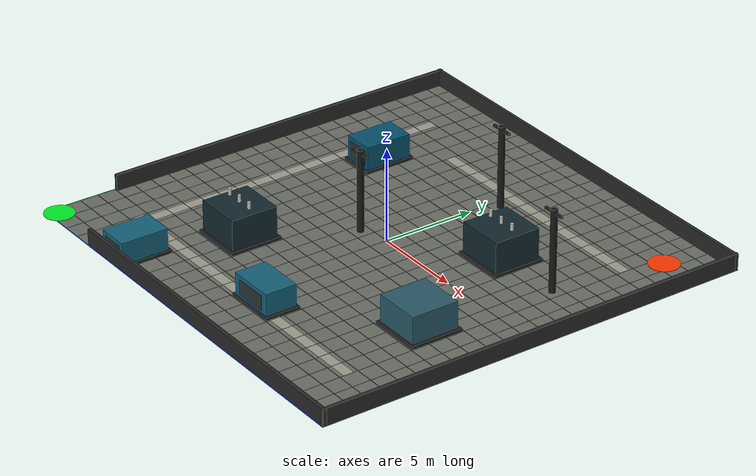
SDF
<?xml version='1.0' encoding='utf-8'?>
<sdf version="1.9">
  <world name="substation_medium">
    <gravity>0 0 -9.81</gravity>
    <magnetic_field>6e-06 2.3e-05 -4.2e-05</magnetic_field>
    <atmosphere type="adiabatic" />
    <scene>
      <ambient>0.72 0.72 0.72 1</ambient>
      <background>0.72 0.75 0.78 1</background>
    </scene>
    <light name="sun" type="directional">
      <cast_shadows>true</cast_shadows>
      <pose>0 0 20 0 0 0</pose>
      <diffuse>0.85 0.85 0.82 1</diffuse>
      <specular>0.2 0.2 0.2 1</specular>
      <direction>-0.5 0.1 -0.9</direction>
    </light>
    <spherical_coordinates>
      <surface_model>EARTH_WGS84</surface_model>
      <world_frame_orientation>ENU</world_frame_orientation>
      <latitude_deg>47.397971057728974</latitude_deg>
      <longitude_deg>8.546163739800146</longitude_deg>
      <elevation>0</elevation>
    </spherical_coordinates>
    <model name="substation_map">
      <static>true</static>
      <pose>-12 -12 0 0 0 0</pose>
      <model name="ground_plane">
        <static>true</static>
        <pose>12 12 0 0 0 0</pose>
        <link name="link">
          <collision name="collision">
            <geometry>
              <plane>
                <normal>0 0 1</normal>
                <size>28 28</size>
              </plane>
            </geometry>
          </collision>
        </link>
      </model>
      <model name="substation_floor">
        <static>true</static>
        <pose>12 12 0.01 0 0 0</pose>
        <link name="link">
          <visual name="visual">
            <pose>0 0 0 0 0 0</pose>
            <geometry>
              <box>
                <size>24 24 0.02</size>
              </box>
            </geometry>
            <material>
              <ambient>0.42 0.43 0.40 1</ambient>
              <diffuse>0.42 0.43 0.40 1</diffuse>
              <specular>0.08 0.08 0.08 1</specular>
            </material>
          </visual>
        </link>
      </model>
      <model name="substation_floor_grid">
        <static>true</static>
        <pose>0 0 0 0 0 0</pose>
        <link name="link">
          <visual name="x_grid_00">
            <pose>0 12 0.024 0 0 0</pose>
            <geometry>
              <box>
                <size>0.025 24 0.006</size>
              </box>
            </geometry>
            <material>
              <ambient>0.16 0.17 0.16 1</ambient>
              <diffuse>0.16 0.17 0.16 1</diffuse>
              <specular>0.08 0.08 0.08 1</specular>
            </material>
          </visual>
          <visual name="x_grid_01">
            <pose>1 12 0.024 0 0 0</pose>
            <geometry>
              <box>
                <size>0.025 24 0.006</size>
              </box>
            </geometry>
            <material>
              <ambient>0.16 0.17 0.16 1</ambient>
              <diffuse>0.16 0.17 0.16 1</diffuse>
              <specular>0.08 0.08 0.08 1</specular>
            </material>
          </visual>
          <visual name="x_grid_02">
            <pose>2 12 0.024 0 0 0</pose>
            <geometry>
              <box>
                <size>0.025 24 0.006</size>
              </box>
            </geometry>
            <material>
              <ambient>0.16 0.17 0.16 1</ambient>
              <diffuse>0.16 0.17 0.16 1</diffuse>
              <specular>0.08 0.08 0.08 1</specular>
            </material>
          </visual>
          <visual name="x_grid_03">
            <pose>3 12 0.024 0 0 0</pose>
            <geometry>
              <box>
                <size>0.025 24 0.006</size>
              </box>
            </geometry>
            <material>
              <ambient>0.16 0.17 0.16 1</ambient>
              <diffuse>0.16 0.17 0.16 1</diffuse>
              <specular>0.08 0.08 0.08 1</specular>
            </material>
          </visual>
          <visual name="x_grid_04">
            <pose>4 12 0.024 0 0 0</pose>
            <geometry>
              <box>
                <size>0.025 24 0.006</size>
              </box>
            </geometry>
            <material>
              <ambient>0.16 0.17 0.16 1</ambient>
              <diffuse>0.16 0.17 0.16 1</diffuse>
              <specular>0.08 0.08 0.08 1</specular>
            </material>
          </visual>
          <visual name="x_grid_05">
            <pose>5 12 0.024 0 0 0</pose>
            <geometry>
              <box>
                <size>0.025 24 0.006</size>
              </box>
            </geometry>
            <material>
              <ambient>0.16 0.17 0.16 1</ambient>
              <diffuse>0.16 0.17 0.16 1</diffuse>
              <specular>0.08 0.08 0.08 1</specular>
            </material>
          </visual>
          <visual name="x_grid_06">
            <pose>6 12 0.024 0 0 0</pose>
            <geometry>
              <box>
                <size>0.025 24 0.006</size>
              </box>
            </geometry>
            <material>
              <ambient>0.16 0.17 0.16 1</ambient>
              <diffuse>0.16 0.17 0.16 1</diffuse>
              <specular>0.08 0.08 0.08 1</specular>
            </material>
          </visual>
          <visual name="x_grid_07">
            <pose>7 12 0.024 0 0 0</pose>
            <geometry>
              <box>
                <size>0.025 24 0.006</size>
              </box>
            </geometry>
            <material>
              <ambient>0.16 0.17 0.16 1</ambient>
              <diffuse>0.16 0.17 0.16 1</diffuse>
              <specular>0.08 0.08 0.08 1</specular>
            </material>
          </visual>
          <visual name="x_grid_08">
            <pose>8 12 0.024 0 0 0</pose>
            <geometry>
              <box>
                <size>0.025 24 0.006</size>
              </box>
            </geometry>
            <material>
              <ambient>0.16 0.17 0.16 1</ambient>
              <diffuse>0.16 0.17 0.16 1</diffuse>
              <specular>0.08 0.08 0.08 1</specular>
            </material>
          </visual>
          <visual name="x_grid_09">
            <pose>9 12 0.024 0 0 0</pose>
            <geometry>
              <box>
                <size>0.025 24 0.006</size>
              </box>
            </geometry>
            <material>
              <ambient>0.16 0.17 0.16 1</ambient>
              <diffuse>0.16 0.17 0.16 1</diffuse>
              <specular>0.08 0.08 0.08 1</specular>
            </material>
          </visual>
          <visual name="x_grid_10">
            <pose>10 12 0.024 0 0 0</pose>
            <geometry>
              <box>
                <size>0.025 24 0.006</size>
              </box>
            </geometry>
            <material>
              <ambient>0.16 0.17 0.16 1</ambient>
              <diffuse>0.16 0.17 0.16 1</diffuse>
              <specular>0.08 0.08 0.08 1</specular>
            </material>
          </visual>
          <visual name="x_grid_11">
            <pose>11 12 0.024 0 0 0</pose>
            <geometry>
              <box>
                <size>0.025 24 0.006</size>
              </box>
            </geometry>
            <material>
              <ambient>0.16 0.17 0.16 1</ambient>
              <diffuse>0.16 0.17 0.16 1</diffuse>
              <specular>0.08 0.08 0.08 1</specular>
            </material>
          </visual>
          <visual name="x_grid_12">
            <pose>12 12 0.024 0 0 0</pose>
            <geometry>
              <box>
                <size>0.025 24 0.006</size>
              </box>
            </geometry>
            <material>
              <ambient>0.16 0.17 0.16 1</ambient>
              <diffuse>0.16 0.17 0.16 1</diffuse>
              <specular>0.08 0.08 0.08 1</specular>
            </material>
          </visual>
          <visual name="x_grid_13">
            <pose>13 12 0.024 0 0 0</pose>
            <geometry>
              <box>
                <size>0.025 24 0.006</size>
              </box>
            </geometry>
            <material>
              <ambient>0.16 0.17 0.16 1</ambient>
              <diffuse>0.16 0.17 0.16 1</diffuse>
              <specular>0.08 0.08 0.08 1</specular>
            </material>
          </visual>
          <visual name="x_grid_14">
            <pose>14 12 0.024 0 0 0</pose>
            <geometry>
              <box>
                <size>0.025 24 0.006</size>
              </box>
            </geometry>
            <material>
              <ambient>0.16 0.17 0.16 1</ambient>
              <diffuse>0.16 0.17 0.16 1</diffuse>
              <specular>0.08 0.08 0.08 1</specular>
            </material>
          </visual>
          <visual name="x_grid_15">
            <pose>15 12 0.024 0 0 0</pose>
            <geometry>
              <box>
                <size>0.025 24 0.006</size>
              </box>
            </geometry>
            <material>
              <ambient>0.16 0.17 0.16 1</ambient>
              <diffuse>0.16 0.17 0.16 1</diffuse>
              <specular>0.08 0.08 0.08 1</specular>
            </material>
          </visual>
          <visual name="x_grid_16">
            <pose>16 12 0.024 0 0 0</pose>
            <geometry>
              <box>
                <size>0.025 24 0.006</size>
              </box>
            </geometry>
            <material>
              <ambient>0.16 0.17 0.16 1</ambient>
              <diffuse>0.16 0.17 0.16 1</diffuse>
              <specular>0.08 0.08 0.08 1</specular>
            </material>
          </visual>
          <visual name="x_grid_17">
            <pose>17 12 0.024 0 0 0</pose>
            <geometry>
              <box>
                <size>0.025 24 0.006</size>
              </box>
            </geometry>
            <material>
              <ambient>0.16 0.17 0.16 1</ambient>
              <diffuse>0.16 0.17 0.16 1</diffuse>
              <specular>0.08 0.08 0.08 1</specular>
            </material>
          </visual>
          <visual name="x_grid_18">
            <pose>18 12 0.024 0 0 0</pose>
            <geometry>
              <box>
                <size>0.025 24 0.006</size>
              </box>
            </geometry>
            <material>
              <ambient>0.16 0.17 0.16 1</ambient>
              <diffuse>0.16 0.17 0.16 1</diffuse>
              <specular>0.08 0.08 0.08 1</specular>
            </material>
          </visual>
          <visual name="x_grid_19">
            <pose>19 12 0.024 0 0 0</pose>
            <geometry>
              <box>
                <size>0.025 24 0.006</size>
              </box>
            </geometry>
            <material>
              <ambient>0.16 0.17 0.16 1</ambient>
              <diffuse>0.16 0.17 0.16 1</diffuse>
              <specular>0.08 0.08 0.08 1</specular>
            </material>
          </visual>
          <visual name="x_grid_20">
            <pose>20 12 0.024 0 0 0</pose>
            <geometry>
              <box>
                <size>0.025 24 0.006</size>
              </box>
            </geometry>
            <material>
              <ambient>0.16 0.17 0.16 1</ambient>
              <diffuse>0.16 0.17 0.16 1</diffuse>
              <specular>0.08 0.08 0.08 1</specular>
            </material>
          </visual>
          <visual name="x_grid_21">
            <pose>21 12 0.024 0 0 0</pose>
            <geometry>
              <box>
                <size>0.025 24 0.006</size>
              </box>
            </geometry>
            <material>
              <ambient>0.16 0.17 0.16 1</ambient>
              <diffuse>0.16 0.17 0.16 1</diffuse>
              <specular>0.08 0.08 0.08 1</specular>
            </material>
          </visual>
          <visual name="x_grid_22">
            <pose>22 12 0.024 0 0 0</pose>
            <geometry>
              <box>
                <size>0.025 24 0.006</size>
              </box>
            </geometry>
            <material>
              <ambient>0.16 0.17 0.16 1</ambient>
              <diffuse>0.16 0.17 0.16 1</diffuse>
              <specular>0.08 0.08 0.08 1</specular>
            </material>
          </visual>
          <visual name="x_grid_23">
            <pose>23 12 0.024 0 0 0</pose>
            <geometry>
              <box>
                <size>0.025 24 0.006</size>
              </box>
            </geometry>
            <material>
              <ambient>0.16 0.17 0.16 1</ambient>
              <diffuse>0.16 0.17 0.16 1</diffuse>
              <specular>0.08 0.08 0.08 1</specular>
            </material>
          </visual>
          <visual name="x_grid_24">
            <pose>24 12 0.024 0 0 0</pose>
            <geometry>
              <box>
                <size>0.025 24 0.006</size>
              </box>
            </geometry>
            <material>
              <ambient>0.16 0.17 0.16 1</ambient>
              <diffuse>0.16 0.17 0.16 1</diffuse>
              <specular>0.08 0.08 0.08 1</specular>
            </material>
          </visual>
          <visual name="y_grid_00">
            <pose>12 0 0.024 0 0 0</pose>
            <geometry>
              <box>
                <size>24 0.025 0.006</size>
              </box>
            </geometry>
            <material>
              <ambient>0.16 0.17 0.16 1</ambient>
              <diffuse>0.16 0.17 0.16 1</diffuse>
              <specular>0.08 0.08 0.08 1</specular>
            </material>
          </visual>
          <visual name="y_grid_01">
            <pose>12 1 0.024 0 0 0</pose>
            <geometry>
              <box>
                <size>24 0.025 0.006</size>
              </box>
            </geometry>
            <material>
              <ambient>0.16 0.17 0.16 1</ambient>
              <diffuse>0.16 0.17 0.16 1</diffuse>
              <specular>0.08 0.08 0.08 1</specular>
            </material>
          </visual>
          <visual name="y_grid_02">
            <pose>12 2 0.024 0 0 0</pose>
            <geometry>
              <box>
                <size>24 0.025 0.006</size>
              </box>
            </geometry>
            <material>
              <ambient>0.16 0.17 0.16 1</ambient>
              <diffuse>0.16 0.17 0.16 1</diffuse>
              <specular>0.08 0.08 0.08 1</specular>
            </material>
          </visual>
          <visual name="y_grid_03">
            <pose>12 3 0.024 0 0 0</pose>
            <geometry>
              <box>
                <size>24 0.025 0.006</size>
              </box>
            </geometry>
            <material>
              <ambient>0.16 0.17 0.16 1</ambient>
              <diffuse>0.16 0.17 0.16 1</diffuse>
              <specular>0.08 0.08 0.08 1</specular>
            </material>
          </visual>
          <visual name="y_grid_04">
            <pose>12 4 0.024 0 0 0</pose>
            <geometry>
              <box>
                <size>24 0.025 0.006</size>
              </box>
            </geometry>
            <material>
              <ambient>0.16 0.17 0.16 1</ambient>
              <diffuse>0.16 0.17 0.16 1</diffuse>
              <specular>0.08 0.08 0.08 1</specular>
            </material>
          </visual>
          <visual name="y_grid_05">
            <pose>12 5 0.024 0 0 0</pose>
            <geometry>
              <box>
                <size>24 0.025 0.006</size>
              </box>
            </geometry>
            <material>
              <ambient>0.16 0.17 0.16 1</ambient>
              <diffuse>0.16 0.17 0.16 1</diffuse>
              <specular>0.08 0.08 0.08 1</specular>
            </material>
          </visual>
          <visual name="y_grid_06">
            <pose>12 6 0.024 0 0 0</pose>
            <geometry>
              <box>
                <size>24 0.025 0.006</size>
              </box>
            </geometry>
            <material>
              <ambient>0.16 0.17 0.16 1</ambient>
              <diffuse>0.16 0.17 0.16 1</diffuse>
              <specular>0.08 0.08 0.08 1</specular>
            </material>
          </visual>
          <visual name="y_grid_07">
            <pose>12 7 0.024 0 0 0</pose>
            <geometry>
              <box>
                <size>24 0.025 0.006</size>
              </box>
            </geometry>
            <material>
              <ambient>0.16 0.17 0.16 1</ambient>
              <diffuse>0.16 0.17 0.16 1</diffuse>
              <specular>0.08 0.08 0.08 1</specular>
            </material>
          </visual>
          <visual name="y_grid_08">
            <pose>12 8 0.024 0 0 0</pose>
            <geometry>
              <box>
                <size>24 0.025 0.006</size>
              </box>
            </geometry>
            <material>
              <ambient>0.16 0.17 0.16 1</ambient>
              <diffuse>0.16 0.17 0.16 1</diffuse>
              <specular>0.08 0.08 0.08 1</specular>
            </material>
          </visual>
          <visual name="y_grid_09">
            <pose>12 9 0.024 0 0 0</pose>
            <geometry>
              <box>
                <size>24 0.025 0.006</size>
              </box>
            </geometry>
            <material>
              <ambient>0.16 0.17 0.16 1</ambient>
              <diffuse>0.16 0.17 0.16 1</diffuse>
              <specular>0.08 0.08 0.08 1</specular>
            </material>
          </visual>
          <visual name="y_grid_10">
            <pose>12 10 0.024 0 0 0</pose>
            <geometry>
              <box>
                <size>24 0.025 0.006</size>
              </box>
            </geometry>
            <material>
              <ambient>0.16 0.17 0.16 1</ambient>
              <diffuse>0.16 0.17 0.16 1</diffuse>
              <specular>0.08 0.08 0.08 1</specular>
            </material>
          </visual>
          <visual name="y_grid_11">
            <pose>12 11 0.024 0 0 0</pose>
            <geometry>
              <box>
                <size>24 0.025 0.006</size>
              </box>
            </geometry>
            <material>
              <ambient>0.16 0.17 0.16 1</ambient>
              <diffuse>0.16 0.17 0.16 1</diffuse>
              <specular>0.08 0.08 0.08 1</specular>
            </material>
          </visual>
          <visual name="y_grid_12">
            <pose>12 12 0.024 0 0 0</pose>
            <geometry>
              <box>
                <size>24 0.025 0.006</size>
              </box>
            </geometry>
            <material>
              <ambient>0.16 0.17 0.16 1</ambient>
              <diffuse>0.16 0.17 0.16 1</diffuse>
              <specular>0.08 0.08 0.08 1</specular>
            </material>
          </visual>
          <visual name="y_grid_13">
            <pose>12 13 0.024 0 0 0</pose>
            <geometry>
              <box>
                <size>24 0.025 0.006</size>
              </box>
            </geometry>
            <material>
              <ambient>0.16 0.17 0.16 1</ambient>
              <diffuse>0.16 0.17 0.16 1</diffuse>
              <specular>0.08 0.08 0.08 1</specular>
            </material>
          </visual>
          <visual name="y_grid_14">
            <pose>12 14 0.024 0 0 0</pose>
            <geometry>
              <box>
                <size>24 0.025 0.006</size>
              </box>
            </geometry>
            <material>
              <ambient>0.16 0.17 0.16 1</ambient>
              <diffuse>0.16 0.17 0.16 1</diffuse>
              <specular>0.08 0.08 0.08 1</specular>
            </material>
          </visual>
          <visual name="y_grid_15">
            <pose>12 15 0.024 0 0 0</pose>
            <geometry>
              <box>
                <size>24 0.025 0.006</size>
              </box>
            </geometry>
            <material>
              <ambient>0.16 0.17 0.16 1</ambient>
              <diffuse>0.16 0.17 0.16 1</diffuse>
              <specular>0.08 0.08 0.08 1</specular>
            </material>
          </visual>
          <visual name="y_grid_16">
            <pose>12 16 0.024 0 0 0</pose>
            <geometry>
              <box>
                <size>24 0.025 0.006</size>
              </box>
            </geometry>
            <material>
              <ambient>0.16 0.17 0.16 1</ambient>
              <diffuse>0.16 0.17 0.16 1</diffuse>
              <specular>0.08 0.08 0.08 1</specular>
            </material>
          </visual>
          <visual name="y_grid_17">
            <pose>12 17 0.024 0 0 0</pose>
            <geometry>
              <box>
                <size>24 0.025 0.006</size>
              </box>
            </geometry>
            <material>
              <ambient>0.16 0.17 0.16 1</ambient>
              <diffuse>0.16 0.17 0.16 1</diffuse>
              <specular>0.08 0.08 0.08 1</specular>
            </material>
          </visual>
          <visual name="y_grid_18">
            <pose>12 18 0.024 0 0 0</pose>
            <geometry>
              <box>
                <size>24 0.025 0.006</size>
              </box>
            </geometry>
            <material>
              <ambient>0.16 0.17 0.16 1</ambient>
              <diffuse>0.16 0.17 0.16 1</diffuse>
              <specular>0.08 0.08 0.08 1</specular>
            </material>
          </visual>
          <visual name="y_grid_19">
            <pose>12 19 0.024 0 0 0</pose>
            <geometry>
              <box>
                <size>24 0.025 0.006</size>
              </box>
            </geometry>
            <material>
              <ambient>0.16 0.17 0.16 1</ambient>
              <diffuse>0.16 0.17 0.16 1</diffuse>
              <specular>0.08 0.08 0.08 1</specular>
            </material>
          </visual>
          <visual name="y_grid_20">
            <pose>12 20 0.024 0 0 0</pose>
            <geometry>
              <box>
                <size>24 0.025 0.006</size>
              </box>
            </geometry>
            <material>
              <ambient>0.16 0.17 0.16 1</ambient>
              <diffuse>0.16 0.17 0.16 1</diffuse>
              <specular>0.08 0.08 0.08 1</specular>
            </material>
          </visual>
          <visual name="y_grid_21">
            <pose>12 21 0.024 0 0 0</pose>
            <geometry>
              <box>
                <size>24 0.025 0.006</size>
              </box>
            </geometry>
            <material>
              <ambient>0.16 0.17 0.16 1</ambient>
              <diffuse>0.16 0.17 0.16 1</diffuse>
              <specular>0.08 0.08 0.08 1</specular>
            </material>
          </visual>
          <visual name="y_grid_22">
            <pose>12 22 0.024 0 0 0</pose>
            <geometry>
              <box>
                <size>24 0.025 0.006</size>
              </box>
            </geometry>
            <material>
              <ambient>0.16 0.17 0.16 1</ambient>
              <diffuse>0.16 0.17 0.16 1</diffuse>
              <specular>0.08 0.08 0.08 1</specular>
            </material>
          </visual>
          <visual name="y_grid_23">
            <pose>12 23 0.024 0 0 0</pose>
            <geometry>
              <box>
                <size>24 0.025 0.006</size>
              </box>
            </geometry>
            <material>
              <ambient>0.16 0.17 0.16 1</ambient>
              <diffuse>0.16 0.17 0.16 1</diffuse>
              <specular>0.08 0.08 0.08 1</specular>
            </material>
          </visual>
          <visual name="y_grid_24">
            <pose>12 24 0.024 0 0 0</pose>
            <geometry>
              <box>
                <size>24 0.025 0.006</size>
              </box>
            </geometry>
            <material>
              <ambient>0.16 0.17 0.16 1</ambient>
              <diffuse>0.16 0.17 0.16 1</diffuse>
              <specular>0.08 0.08 0.08 1</specular>
            </material>
          </visual>
        </link>
      </model>
      <model name="map_axes">
        <static>true</static>
        <pose>0 0 0 0 0 0</pose>
        <link name="link">
          <visual name="east_axis">
            <pose>12 0 0.028 0 0 0</pose>
            <geometry>
              <box>
                <size>24 0.045 0.012</size>
              </box>
            </geometry>
            <material>
              <ambient>0.08 0.24 0.95 1</ambient>
              <diffuse>0.08 0.24 0.95 1</diffuse>
              <specular>0.08 0.08 0.08 1</specular>
            </material>
          </visual>
          <visual name="north_axis">
            <pose>0 12 0.028 0 0 0</pose>
            <geometry>
              <box>
                <size>0.045 24 0.012</size>
              </box>
            </geometry>
            <material>
              <ambient>0.05 0.76 0.18 1</ambient>
              <diffuse>0.05 0.76 0.18 1</diffuse>
              <specular>0.08 0.08 0.08 1</specular>
            </material>
          </visual>
        </link>
      </model>
      <model name="service_corridor_1">
        <static>true</static>
        <pose>12 3.5 0.021 0 0 0</pose>
        <link name="link">
          <visual name="visual">
            <pose>0 0 0 0 0 0</pose>
            <geometry>
              <box>
                <size>18 0.55 0.01</size>
              </box>
            </geometry>
            <material>
              <ambient>0.62 0.62 0.56 1</ambient>
              <diffuse>0.62 0.62 0.56 1</diffuse>
              <specular>0.08 0.08 0.08 1</specular>
            </material>
          </visual>
        </link>
      </model>
      <model name="service_corridor_2">
        <static>true</static>
        <pose>3.5 12 0.021 0 0 0</pose>
        <link name="link">
          <visual name="visual">
            <pose>0 0 0 0 0 0</pose>
            <geometry>
              <box>
                <size>0.55 18 0.01</size>
              </box>
            </geometry>
            <material>
              <ambient>0.62 0.62 0.56 1</ambient>
              <diffuse>0.62 0.62 0.56 1</diffuse>
              <specular>0.08 0.08 0.08 1</specular>
            </material>
          </visual>
        </link>
      </model>
      <model name="service_corridor_3">
        <static>true</static>
        <pose>14 19.5 0.021 0 0 0</pose>
        <link name="link">
          <visual name="visual">
            <pose>0 0 0 0 0 0</pose>
            <geometry>
              <box>
                <size>14 0.55 0.01</size>
              </box>
            </geometry>
            <material>
              <ambient>0.62 0.62 0.56 1</ambient>
              <diffuse>0.62 0.62 0.56 1</diffuse>
              <specular>0.08 0.08 0.08 1</specular>
            </material>
          </visual>
        </link>
      </model>
      <model name="start_marker">
        <static>true</static>
        <pose>0.5 0.5 0.035 0 0 0</pose>
        <link name="link">
          <visual name="visual">
            <pose>0 0 0 0 0 0</pose>
            <geometry>
              <cylinder>
                <radius>0.8</radius>
                <length>0.03</length>
              </cylinder>
            </geometry>
            <material>
              <ambient>0.0 0.95 0.15 1</ambient>
              <diffuse>0.0 0.95 0.15 1</diffuse>
              <specular>0.08 0.08 0.08 1</specular>
            </material>
          </visual>
        </link>
      </model>
      <model name="goal_marker">
        <static>true</static>
        <pose>21.5 21.5 0.035 0 0 0</pose>
        <link name="link">
          <visual name="visual">
            <pose>0 0 0 0 0 0</pose>
            <geometry>
              <cylinder>
                <radius>0.8</radius>
                <length>0.03</length>
              </cylinder>
            </geometry>
            <material>
              <ambient>1.0 0.22 0.0 1</ambient>
              <diffuse>1.0 0.22 0.0 1</diffuse>
              <specular>0.08 0.08 0.08 1</specular>
            </material>
          </visual>
        </link>
      </model>
      <model name="fence_north">
        <static>true</static>
        <pose>12 23.88 0.45 0 0 0</pose>
        <link name="link">
          <collision name="collision">
            <pose>0 0 0 0 0 0</pose>
            <geometry>
              <box>
                <size>24 0.18 0.9</size>
              </box>
            </geometry>
          </collision>
          <visual name="visual">
            <pose>0 0 0 0 0 0</pose>
            <geometry>
              <box>
                <size>24 0.18 0.9</size>
              </box>
            </geometry>
            <material>
              <ambient>0.16 0.16 0.16 1</ambient>
              <diffuse>0.16 0.16 0.16 1</diffuse>
              <specular>0.08 0.08 0.08 1</specular>
            </material>
          </visual>
        </link>
      </model>
      <model name="fence_east">
        <static>true</static>
        <pose>23.88 12 0.45 0 0 0</pose>
        <link name="link">
          <collision name="collision">
            <pose>0 0 0 0 0 0</pose>
            <geometry>
              <box>
                <size>0.18 24 0.9</size>
              </box>
            </geometry>
          </collision>
          <visual name="visual">
            <pose>0 0 0 0 0 0</pose>
            <geometry>
              <box>
                <size>0.18 24 0.9</size>
              </box>
            </geometry>
            <material>
              <ambient>0.16 0.16 0.16 1</ambient>
              <diffuse>0.16 0.16 0.16 1</diffuse>
              <specular>0.08 0.08 0.08 1</specular>
            </material>
          </visual>
        </link>
      </model>
      <model name="fence_south">
        <static>true</static>
        <pose>14 0.12 0.45 0 0 0</pose>
        <link name="link">
          <collision name="collision">
            <pose>0 0 0 0 0 0</pose>
            <geometry>
              <box>
                <size>20 0.18 0.9</size>
              </box>
            </geometry>
          </collision>
          <visual name="visual">
            <pose>0 0 0 0 0 0</pose>
            <geometry>
              <box>
                <size>20 0.18 0.9</size>
              </box>
            </geometry>
            <material>
              <ambient>0.16 0.16 0.16 1</ambient>
              <diffuse>0.16 0.16 0.16 1</diffuse>
              <specular>0.08 0.08 0.08 1</specular>
            </material>
          </visual>
        </link>
      </model>
      <model name="fence_west">
        <static>true</static>
        <pose>0.12 14 0.45 0 0 0</pose>
        <link name="link">
          <collision name="collision">
            <pose>0 0 0 0 0 0</pose>
            <geometry>
              <box>
                <size>0.18 20 0.9</size>
              </box>
            </geometry>
          </collision>
          <visual name="visual">
            <pose>0 0 0 0 0 0</pose>
            <geometry>
              <box>
                <size>0.18 20 0.9</size>
              </box>
            </geometry>
            <material>
              <ambient>0.16 0.16 0.16 1</ambient>
              <diffuse>0.16 0.16 0.16 1</diffuse>
              <specular>0.08 0.08 0.08 1</specular>
            </material>
          </visual>
        </link>
      </model>
    </model>
    <model name="entry_switchgear">
      <static>true</static>
      <pose>-6 -10.5 0 0 0 0</pose>
      <link name="link">
        <collision name="collision">
          <pose>0 0 0.7 0 0 0</pose>
          <geometry>
            <box>
              <size>1.84 2.76 1.4</size>
            </box>
          </geometry>
        </collision>
        <visual name="base">
          <pose>0 0 0.08 0 0 0</pose>
          <geometry>
            <box>
              <size>1.92 2.88 0.16</size>
            </box>
          </geometry>
          <material>
            <ambient>0.10 0.10 0.10 1</ambient>
            <diffuse>0.10 0.10 0.10 1</diffuse>
            <specular>0.08 0.08 0.08 1</specular>
          </material>
          <plugin filename="gz-sim-label-system" name="gz::sim::systems::Label">
            <label>127</label>
          </plugin>
        </visual>
        <visual name="body">
          <pose>0 0 0.7 0 0 0</pose>
          <geometry>
            <box>
              <size>1.72 2.58 1.26</size>
            </box>
          </geometry>
          <material>
            <ambient>0.08 0.38 0.48 1</ambient>
            <diffuse>0.08 0.38 0.48 1</diffuse>
            <specular>0.08 0.08 0.08 1</specular>
          </material>
          <plugin filename="gz-sim-label-system" name="gz::sim::systems::Label">
            <label>127</label>
          </plugin>
        </visual>
        <visual name="front_panel">
          <pose>0 -1.305 0.7 0 0 0</pose>
          <geometry>
            <box>
              <size>1.24 0.025 0.812</size>
            </box>
          </geometry>
          <material>
            <ambient>0.16 0.20 0.21 1</ambient>
            <diffuse>0.16 0.20 0.21 1</diffuse>
            <specular>0.08 0.08 0.08 1</specular>
          </material>
          <plugin filename="gz-sim-label-system" name="gz::sim::systems::Label">
            <label>127</label>
          </plugin>
        </visual>
      </link>
    </model>
    <model name="transformer_west">
      <static>true</static>
      <pose>-4.5 -5.5 0 0 0 0</pose>
      <link name="link">
        <collision name="collision">
          <pose>0 0 0.95 0 0 0</pose>
          <geometry>
            <box>
              <size>2.76 2.76 1.9</size>
            </box>
          </geometry>
        </collision>
        <visual name="base">
          <pose>0 0 0.08 0 0 0</pose>
          <geometry>
            <box>
              <size>2.88 2.88 0.16</size>
            </box>
          </geometry>
          <material>
            <ambient>0.10 0.10 0.10 1</ambient>
            <diffuse>0.10 0.10 0.10 1</diffuse>
            <specular>0.08 0.08 0.08 1</specular>
          </material>
          <plugin filename="gz-sim-label-system" name="gz::sim::systems::Label">
            <label>55</label>
          </plugin>
        </visual>
        <visual name="body">
          <pose>0 0 0.95 0 0 0</pose>
          <geometry>
            <box>
              <size>2.58 2.58 1.71</size>
            </box>
          </geometry>
          <material>
            <ambient>0.07 0.16 0.19 1</ambient>
            <diffuse>0.07 0.16 0.19 1</diffuse>
            <specular>0.08 0.08 0.08 1</specular>
          </material>
          <plugin filename="gz-sim-label-system" name="gz::sim::systems::Label">
            <label>55</label>
          </plugin>
        </visual>
        <visual name="bushing_1">
          <pose>-0.84 0 2.08 0 0 0</pose>
          <geometry>
            <cylinder>
              <radius>0.09</radius>
              <length>0.36</length>
            </cylinder>
          </geometry>
          <material>
            <ambient>0.75 0.72 0.64 1</ambient>
            <diffuse>0.75 0.72 0.64 1</diffuse>
            <specular>0.08 0.08 0.08 1</specular>
          </material>
          <plugin filename="gz-sim-label-system" name="gz::sim::systems::Label">
            <label>55</label>
          </plugin>
        </visual>
        <visual name="bushing_2">
          <pose>0 0 2.08 0 0 0</pose>
          <geometry>
            <cylinder>
              <radius>0.09</radius>
              <length>0.36</length>
            </cylinder>
          </geometry>
          <material>
            <ambient>0.75 0.72 0.64 1</ambient>
            <diffuse>0.75 0.72 0.64 1</diffuse>
            <specular>0.08 0.08 0.08 1</specular>
          </material>
          <plugin filename="gz-sim-label-system" name="gz::sim::systems::Label">
            <label>55</label>
          </plugin>
        </visual>
        <visual name="bushing_3">
          <pose>0.84 0 2.08 0 0 0</pose>
          <geometry>
            <cylinder>
              <radius>0.09</radius>
              <length>0.36</length>
            </cylinder>
          </geometry>
          <material>
            <ambient>0.75 0.72 0.64 1</ambient>
            <diffuse>0.75 0.72 0.64 1</diffuse>
            <specular>0.08 0.08 0.08 1</specular>
          </material>
          <plugin filename="gz-sim-label-system" name="gz::sim::systems::Label">
            <label>55</label>
          </plugin>
        </visual>
      </link>
    </model>
    <model name="transformer_north">
      <static>true</static>
      <pose>4.5 3.5 0 0 0 0</pose>
      <link name="link">
        <collision name="collision">
          <pose>0 0 0.95 0 0 0</pose>
          <geometry>
            <box>
              <size>2.76 2.76 1.9</size>
            </box>
          </geometry>
        </collision>
        <visual name="base">
          <pose>0 0 0.08 0 0 0</pose>
          <geometry>
            <box>
              <size>2.88 2.88 0.16</size>
            </box>
          </geometry>
          <material>
            <ambient>0.10 0.10 0.10 1</ambient>
            <diffuse>0.10 0.10 0.10 1</diffuse>
            <specular>0.08 0.08 0.08 1</specular>
          </material>
          <plugin filename="gz-sim-label-system" name="gz::sim::systems::Label">
            <label>79</label>
          </plugin>
        </visual>
        <visual name="body">
          <pose>0 0 0.95 0 0 0</pose>
          <geometry>
            <box>
              <size>2.58 2.58 1.71</size>
            </box>
          </geometry>
          <material>
            <ambient>0.07 0.16 0.19 1</ambient>
            <diffuse>0.07 0.16 0.19 1</diffuse>
            <specular>0.08 0.08 0.08 1</specular>
          </material>
          <plugin filename="gz-sim-label-system" name="gz::sim::systems::Label">
            <label>79</label>
          </plugin>
        </visual>
        <visual name="bushing_1">
          <pose>-0.84 0 2.08 0 0 0</pose>
          <geometry>
            <cylinder>
              <radius>0.09</radius>
              <length>0.36</length>
            </cylinder>
          </geometry>
          <material>
            <ambient>0.75 0.72 0.64 1</ambient>
            <diffuse>0.75 0.72 0.64 1</diffuse>
            <specular>0.08 0.08 0.08 1</specular>
          </material>
          <plugin filename="gz-sim-label-system" name="gz::sim::systems::Label">
            <label>79</label>
          </plugin>
        </visual>
        <visual name="bushing_2">
          <pose>0 0 2.08 0 0 0</pose>
          <geometry>
            <cylinder>
              <radius>0.09</radius>
              <length>0.36</length>
            </cylinder>
          </geometry>
          <material>
            <ambient>0.75 0.72 0.64 1</ambient>
            <diffuse>0.75 0.72 0.64 1</diffuse>
            <specular>0.08 0.08 0.08 1</specular>
          </material>
          <plugin filename="gz-sim-label-system" name="gz::sim::systems::Label">
            <label>79</label>
          </plugin>
        </visual>
        <visual name="bushing_3">
          <pose>0.84 0 2.08 0 0 0</pose>
          <geometry>
            <cylinder>
              <radius>0.09</radius>
              <length>0.36</length>
            </cylinder>
          </geometry>
          <material>
            <ambient>0.75 0.72 0.64 1</ambient>
            <diffuse>0.75 0.72 0.64 1</diffuse>
            <specular>0.08 0.08 0.08 1</specular>
          </material>
          <plugin filename="gz-sim-label-system" name="gz::sim::systems::Label">
            <label>79</label>
          </plugin>
        </visual>
      </link>
    </model>
    <model name="cabinet_west">
      <static>true</static>
      <pose>-7 4.5 0 0 0 0</pose>
      <link name="link">
        <collision name="collision">
          <pose>0 0 0.75 0 0 0</pose>
          <geometry>
            <box>
              <size>1.84 2.76 1.5</size>
            </box>
          </geometry>
        </collision>
        <visual name="base">
          <pose>0 0 0.08 0 0 0</pose>
          <geometry>
            <box>
              <size>1.92 2.88 0.16</size>
            </box>
          </geometry>
          <material>
            <ambient>0.10 0.10 0.10 1</ambient>
            <diffuse>0.10 0.10 0.10 1</diffuse>
            <specular>0.08 0.08 0.08 1</specular>
          </material>
        </visual>
        <visual name="body">
          <pose>0 0 0.75 0 0 0</pose>
          <geometry>
            <box>
              <size>1.72 2.58 1.35</size>
            </box>
          </geometry>
          <material>
            <ambient>0.02 0.32 0.43 1</ambient>
            <diffuse>0.02 0.32 0.43 1</diffuse>
            <specular>0.08 0.08 0.08 1</specular>
          </material>
        </visual>
        <visual name="front_panel">
          <pose>0 -1.305 0.75 0 0 0</pose>
          <geometry>
            <box>
              <size>1.24 0.025 0.87</size>
            </box>
          </geometry>
          <material>
            <ambient>0.16 0.20 0.21 1</ambient>
            <diffuse>0.16 0.20 0.21 1</diffuse>
            <specular>0.08 0.08 0.08 1</specular>
          </material>
        </visual>
      </link>
    </model>
    <model name="switchgear_south">
      <static>true</static>
      <pose>1.5 -8 0 0 0 0</pose>
      <link name="link">
        <collision name="collision">
          <pose>0 0 0.7 0 0 0</pose>
          <geometry>
            <box>
              <size>2.76 1.84 1.4</size>
            </box>
          </geometry>
        </collision>
        <visual name="base">
          <pose>0 0 0.08 0 0 0</pose>
          <geometry>
            <box>
              <size>2.88 1.92 0.16</size>
            </box>
          </geometry>
          <material>
            <ambient>0.10 0.10 0.10 1</ambient>
            <diffuse>0.10 0.10 0.10 1</diffuse>
            <specular>0.08 0.08 0.08 1</specular>
          </material>
          <plugin filename="gz-sim-label-system" name="gz::sim::systems::Label">
            <label>149</label>
          </plugin>
        </visual>
        <visual name="body">
          <pose>0 0 0.7 0 0 0</pose>
          <geometry>
            <box>
              <size>2.58 1.72 1.26</size>
            </box>
          </geometry>
          <material>
            <ambient>0.08 0.38 0.48 1</ambient>
            <diffuse>0.08 0.38 0.48 1</diffuse>
            <specular>0.08 0.08 0.08 1</specular>
          </material>
          <plugin filename="gz-sim-label-system" name="gz::sim::systems::Label">
            <label>149</label>
          </plugin>
        </visual>
        <visual name="front_panel">
          <pose>0 -0.87 0.7 0 0 0</pose>
          <geometry>
            <box>
              <size>1.86 0.025 0.812</size>
            </box>
          </geometry>
          <material>
            <ambient>0.16 0.20 0.21 1</ambient>
            <diffuse>0.16 0.20 0.21 1</diffuse>
            <specular>0.08 0.08 0.08 1</specular>
          </material>
          <plugin filename="gz-sim-label-system" name="gz::sim::systems::Label">
            <label>149</label>
          </plugin>
        </visual>
      </link>
    </model>
    <model name="capacitor_east">
      <static>true</static>
      <pose>7.5 -3.5 0 0 0 0</pose>
      <link name="link">
        <collision name="collision">
          <pose>0 0 0.85 0 0 0</pose>
          <geometry>
            <box>
              <size>2.76 2.76 1.7</size>
            </box>
          </geometry>
        </collision>
        <visual name="base">
          <pose>0 0 0.08 0 0 0</pose>
          <geometry>
            <box>
              <size>2.88 2.88 0.16</size>
            </box>
          </geometry>
          <material>
            <ambient>0.10 0.10 0.10 1</ambient>
            <diffuse>0.10 0.10 0.10 1</diffuse>
            <specular>0.08 0.08 0.08 1</specular>
          </material>
          <plugin filename="gz-sim-label-system" name="gz::sim::systems::Label">
            <label>178</label>
          </plugin>
        </visual>
        <visual name="body">
          <pose>0 0 0.85 0 0 0</pose>
          <geometry>
            <box>
              <size>2.58 2.58 1.53</size>
            </box>
          </geometry>
          <material>
            <ambient>0.16 0.35 0.40 1</ambient>
            <diffuse>0.16 0.35 0.40 1</diffuse>
            <specular>0.08 0.08 0.08 1</specular>
          </material>
          <plugin filename="gz-sim-label-system" name="gz::sim::systems::Label">
            <label>178</label>
          </plugin>
        </visual>
        <visual name="capacitor_-0.22_-0.25">
          <pose>-0.75 -0.66 0.93 0 0 0</pose>
          <geometry>
            <cylinder>
              <radius>0.1</radius>
              <length>1.105</length>
            </cylinder>
          </geometry>
          <material>
            <ambient>0.72 0.74 0.70 1</ambient>
            <diffuse>0.72 0.74 0.70 1</diffuse>
            <specular>0.08 0.08 0.08 1</specular>
          </material>
          <plugin filename="gz-sim-label-system" name="gz::sim::systems::Label">
            <label>178</label>
          </plugin>
        </visual>
        <visual name="capacitor_-0.22_0.0">
          <pose>0 -0.66 0.93 0 0 0</pose>
          <geometry>
            <cylinder>
              <radius>0.1</radius>
              <length>1.105</length>
            </cylinder>
          </geometry>
          <material>
            <ambient>0.72 0.74 0.70 1</ambient>
            <diffuse>0.72 0.74 0.70 1</diffuse>
            <specular>0.08 0.08 0.08 1</specular>
          </material>
          <plugin filename="gz-sim-label-system" name="gz::sim::systems::Label">
            <label>178</label>
          </plugin>
        </visual>
        <visual name="capacitor_-0.22_0.25">
          <pose>0.75 -0.66 0.93 0 0 0</pose>
          <geometry>
            <cylinder>
              <radius>0.1</radius>
              <length>1.105</length>
            </cylinder>
          </geometry>
          <material>
            <ambient>0.72 0.74 0.70 1</ambient>
            <diffuse>0.72 0.74 0.70 1</diffuse>
            <specular>0.08 0.08 0.08 1</specular>
          </material>
          <plugin filename="gz-sim-label-system" name="gz::sim::systems::Label">
            <label>178</label>
          </plugin>
        </visual>
        <visual name="capacitor_0.22_-0.25">
          <pose>-0.75 0.66 0.93 0 0 0</pose>
          <geometry>
            <cylinder>
              <radius>0.1</radius>
              <length>1.105</length>
            </cylinder>
          </geometry>
          <material>
            <ambient>0.72 0.74 0.70 1</ambient>
            <diffuse>0.72 0.74 0.70 1</diffuse>
            <specular>0.08 0.08 0.08 1</specular>
          </material>
          <plugin filename="gz-sim-label-system" name="gz::sim::systems::Label">
            <label>178</label>
          </plugin>
        </visual>
        <visual name="capacitor_0.22_0.0">
          <pose>0 0.66 0.93 0 0 0</pose>
          <geometry>
            <cylinder>
              <radius>0.1</radius>
              <length>1.105</length>
            </cylinder>
          </geometry>
          <material>
            <ambient>0.72 0.74 0.70 1</ambient>
            <diffuse>0.72 0.74 0.70 1</diffuse>
            <specular>0.08 0.08 0.08 1</specular>
          </material>
          <plugin filename="gz-sim-label-system" name="gz::sim::systems::Label">
            <label>178</label>
          </plugin>
        </visual>
        <visual name="capacitor_0.22_0.25">
          <pose>0.75 0.66 0.93 0 0 0</pose>
          <geometry>
            <cylinder>
              <radius>0.1</radius>
              <length>1.105</length>
            </cylinder>
          </geometry>
          <material>
            <ambient>0.72 0.74 0.70 1</ambient>
            <diffuse>0.72 0.74 0.70 1</diffuse>
            <specular>0.08 0.08 0.08 1</specular>
          </material>
          <plugin filename="gz-sim-label-system" name="gz::sim::systems::Label">
            <label>178</label>
          </plugin>
        </visual>
      </link>
    </model>
    <model name="pole_a">
      <static>true</static>
      <pose>-1.5 -0.5 0 0 0 0</pose>
      <link name="link">
        <collision name="collision">
          <pose>0 0 2.25 0 0 0</pose>
          <geometry>
            <cylinder>
              <radius>0.22</radius>
              <length>4.5</length>
            </cylinder>
          </geometry>
        </collision>
        <visual name="pole">
          <pose>0 0 2.25 0 0 0</pose>
          <geometry>
            <cylinder>
              <radius>0.18</radius>
              <length>4.5</length>
            </cylinder>
          </geometry>
          <material>
            <ambient>0.08 0.09 0.09 1</ambient>
            <diffuse>0.08 0.09 0.09 1</diffuse>
            <specular>0.08 0.08 0.08 1</specular>
          </material>
        </visual>
        <visual name="crossarm">
          <pose>0 0 4.3 0 0 0</pose>
          <geometry>
            <box>
              <size>1.25 0.12 0.12</size>
            </box>
          </geometry>
          <material>
            <ambient>0.18 0.16 0.10 1</ambient>
            <diffuse>0.18 0.16 0.10 1</diffuse>
            <specular>0.08 0.08 0.08 1</specular>
          </material>
        </visual>
      </link>
    </model>
    <model name="pole_b">
      <static>true</static>
      <pose>0.5 6.5 0 0 0 0</pose>
      <link name="link">
        <collision name="collision">
          <pose>0 0 2.25 0 0 0</pose>
          <geometry>
            <cylinder>
              <radius>0.22</radius>
              <length>4.5</length>
            </cylinder>
          </geometry>
        </collision>
        <visual name="pole">
          <pose>0 0 2.25 0 0 0</pose>
          <geometry>
            <cylinder>
              <radius>0.18</radius>
              <length>4.5</length>
            </cylinder>
          </geometry>
          <material>
            <ambient>0.08 0.09 0.09 1</ambient>
            <diffuse>0.08 0.09 0.09 1</diffuse>
            <specular>0.08 0.08 0.08 1</specular>
          </material>
        </visual>
        <visual name="crossarm">
          <pose>0 0 4.3 0 0 0</pose>
          <geometry>
            <box>
              <size>1.25 0.12 0.12</size>
            </box>
          </geometry>
          <material>
            <ambient>0.18 0.16 0.10 1</ambient>
            <diffuse>0.18 0.16 0.10 1</diffuse>
            <specular>0.08 0.08 0.08 1</specular>
          </material>
        </visual>
      </link>
    </model>
    <model name="pole_c">
      <static>true</static>
      <pose>8.5 3.5 0 0 0 0</pose>
      <link name="link">
        <collision name="collision">
          <pose>0 0 2.25 0 0 0</pose>
          <geometry>
            <cylinder>
              <radius>0.22</radius>
              <length>4.5</length>
            </cylinder>
          </geometry>
        </collision>
        <visual name="pole">
          <pose>0 0 2.25 0 0 0</pose>
          <geometry>
            <cylinder>
              <radius>0.18</radius>
              <length>4.5</length>
            </cylinder>
          </geometry>
          <material>
            <ambient>0.08 0.09 0.09 1</ambient>
            <diffuse>0.08 0.09 0.09 1</diffuse>
            <specular>0.08 0.08 0.08 1</specular>
          </material>
        </visual>
        <visual name="crossarm">
          <pose>0 0 4.3 0 0 0</pose>
          <geometry>
            <box>
              <size>1.25 0.12 0.12</size>
            </box>
          </geometry>
          <material>
            <ambient>0.18 0.16 0.10 1</ambient>
            <diffuse>0.18 0.16 0.10 1</diffuse>
            <specular>0.08 0.08 0.08 1</specular>
          </material>
        </visual>
      </link>
    </model>
  </world>
</sdf>
